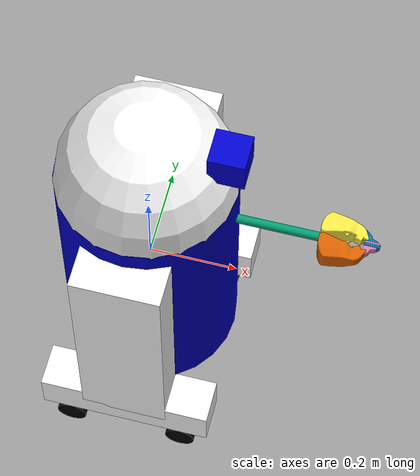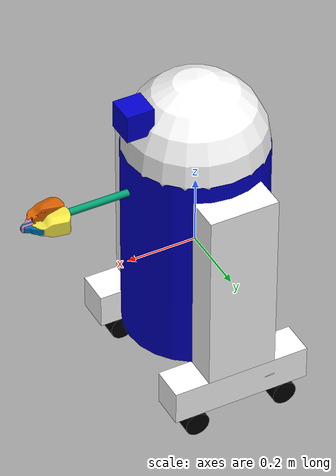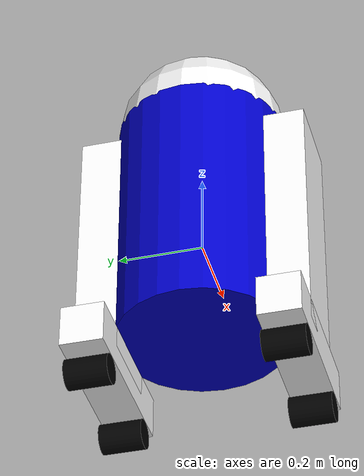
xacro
<?xml version="1.0"?>
<robot name="roscontrol" xmlns:xacro="http://ros.org/wiki/xacro">
<xacro:include filename="$(find myrobot_gazebo)/urdf/camera.xacro" />

  <xacro:property name="width" value="0.2" />
  <xacro:property name="leglen" value="0.6" />
  <xacro:property name="polelen" value="0.2" />
  <xacro:property name="bodylen" value="0.6" />
  <xacro:property name="baselen" value="0.4" />
  <xacro:property name="wheeldiam" value="0.07" />
  <xacro:property name="pi" value="3.1415" />

  <material name="blue">
    <color rgba="0 0 0.8 1"/>
  </material>

  <material name="black">
    <color rgba="0 0 0 1"/>
  </material>

  <material name="white">
    <color rgba="1 1 1 1"/>
  </material>

  <xacro:macro name="default_inertial" params="mass">
    <inertial>
      <mass value="${mass}" />
      <inertia ixx="1.0" ixy="0.0" ixz="0.0" iyy="1.0" iyz="0.0" izz="1.0" />
    </inertial>
  </xacro:macro>

  <!-- BASE-FOOTPRINT -->
  <!-- base_footprint is a fictitious link(frame) that is on the ground right below base_link origin -->
  <link name="base_footprint">
    <visual>
      <origin xyz="0 0 0" rpy="0 0 0" />
      <geometry>
        <box size="0.001 0.001 0.001" />
      </geometry>
    </visual>
  </link>

  <joint name="base_footprint_joint" type="fixed">
    <origin xyz="0 0 ${wheeldiam/2}" rpy="0 0 0" />
    <parent link="base_footprint"/>
    <child link="base_link" />
  </joint>

  <link name="base_link">
    <visual>
      <geometry>
        <cylinder radius="${width}" length="${bodylen}"/>
      </geometry>
      <material name="blue"/>
    </visual>
    <collision>
      <geometry>
        <cylinder radius="${width}" length="${bodylen}"/>
      </geometry>
    </collision>
    <xacro:default_inertial mass="10"/>
  </link>
  <gazebo reference="base_link">
    <material>Gazebo/Blue</material>
  </gazebo>

  <xacro:macro name="wheel" params="prefix suffix reflect">

    <link name="${prefix}_${suffix}_wheel">
      <visual>
        <origin xyz="0 0 0" rpy="${pi/2} 0 0" />
        <geometry>
          <cylinder radius="${wheeldiam/2}" length="0.1"/>
        </geometry>
        <material name="black"/>
      </visual>
      <collision>
        <origin xyz="0 0 0" rpy="${pi/2} 0 0" />
        <geometry>
          <cylinder radius="${wheeldiam/2}" length="0.1"/>
        </geometry>
      </collision>
      <xacro:default_inertial mass="1"/>
    </link>
    <gazebo reference="${prefix}_${suffix}_wheel">
      <material>Gazebo/Black</material>
    </gazebo>

    <joint name="${prefix}_${suffix}_wheel_joint" type="continuous">
      <axis xyz="0 1 0" rpy="0 0 0" />
      <parent link="${prefix}_base"/>
      <child link="${prefix}_${suffix}_wheel"/>
      <origin xyz="${baselen*reflect/3} 0 -${wheeldiam/2+.05}" rpy="0 0 0"/>
    </joint>

    <!-- This block provides the simulator (Gazebo) with information on a few additional
    physical properties. See http://gazebosim.org/tutorials/?tut=ros_urdf for more-->
    <gazebo reference="${prefix}_${suffix}_wheel">
      <mu1 value="200.0"/>
      <mu2 value="100.0"/>
      <kp value="10000000.0" />
      <kd value="1.0" />
      <material>Gazebo/Grey</material>
    </gazebo>

    <!-- This block connects the wheel joint to an actuator (motor), which informs both
    simulation and visualization of the robot -->
    <transmission name="${prefix}_${suffix}_wheel_trans">
      <type>transmission_interface/SimpleTransmission</type>
      <joint name="${prefix}_${suffix}_wheel_joint"/>
      <actuator name="${prefix}_${suffix}_wheel_motor">
        <hardwareInterface>VelocityJointInterface</hardwareInterface>
        <mechanicalReduction>1</mechanicalReduction>
      </actuator>
    </transmission>

  </xacro:macro>

  <xacro:macro name="leg" params="prefix reflect">
    <link name="${prefix}_leg">
      <visual>
        <geometry>
          <box size="${leglen} 0.1 0.2"/>
        </geometry>
        <origin xyz="0 0 -${leglen/2}" rpy="0 ${pi/2} 0"/>
        <material name="white"/>
      </visual>
      <collision>
        <geometry>
          <box size="${leglen} 0.1 0.2"/>
        </geometry>
        <origin xyz="0 0 -${leglen/2}" rpy="0 ${pi/2} 0"/>
      </collision>
      <xacro:default_inertial mass="10"/>
    </link>

    <joint name="base_to_${prefix}_leg" type="fixed">
      <parent link="base_link"/>
      <child link="${prefix}_leg"/>
      <origin xyz="0 ${reflect*(width+.02)} 0.25" />
    </joint>

    <link name="${prefix}_base">
      <visual>
        <geometry>
          <box size="${baselen} 0.1 0.1"/>
        </geometry>
        <material name="white"/>
      </visual>
      <collision>
        <geometry>
          <box size="${baselen} 0.1 0.1"/>
        </geometry>
      </collision>
      <xacro:default_inertial mass="10"/>
    </link>

    <joint name="${prefix}_base_joint" type="fixed">
      <parent link="${prefix}_leg"/>
      <child link="${prefix}_base"/>
      <origin xyz="0 0 ${-leglen}" />
    </joint>
    <xacro:wheel prefix="${prefix}" suffix="front" reflect="1"/>
    <xacro:wheel prefix="${prefix}" suffix="back" reflect="-1"/>
  </xacro:macro>
  <xacro:leg prefix="right" reflect="-1" />
  <xacro:leg prefix="left" reflect="1" />

  <joint name="gripper_extension" type="prismatic">
    <parent link="base_link"/>
    <child link="gripper_pole"/>
    <limit effort="1000.0" lower="-${width*2-.02}" upper="0" velocity="0.5"/>
    <origin rpy="0 0 0" xyz="${width-.01} 0 0.2"/>
    <limit effort="30" velocity="0.2"/>
    <dynamics damping="0.0" friction="0.0"/>
  </joint>

  <link name="gripper_pole">
    <visual>
      <geometry>
        <cylinder length="${polelen}" radius="0.01"/>
      </geometry>
      <origin xyz="${polelen/2} 0 0" rpy="0 ${pi/2} 0 "/>
    </visual>
    <collision>
      <geometry>
        <cylinder length="${polelen}" radius="0.01"/>
      </geometry>
      <origin xyz="${polelen/2} 0 0" rpy="0 ${pi/2} 0 "/>
    </collision>
    <xacro:default_inertial mass="0.05"/>
  </link>

  <xacro:macro name="gripper" params="prefix reflect">
    <joint name="${prefix}_gripper_joint" type="revolute">
      <axis xyz="0 0 ${reflect}"/>
      <limit effort="1000.0" lower="0.0" upper="0.548" velocity="0.5"/>
      <origin rpy="0 0 0" xyz="${polelen} ${reflect*0.01} 0"/>
      <parent link="gripper_pole"/>
      <child link="${prefix}_gripper"/>
      <limit effort="30" velocity="1.0"/>
      <dynamics damping="0.0" friction="0.0"/>
    </joint>
    <link name="${prefix}_gripper">
      <visual>
        <origin rpy="${(reflect-1)/2*pi} 0 0" xyz="0 0 0"/>
        <geometry>
          <mesh filename="package://urdf_tutorial/meshes/l_finger.dae"/>
        </geometry>
      </visual>
      <collision>
        <geometry>
          <mesh filename="package://urdf_tutorial/meshes/l_finger.dae"/>
        </geometry>
        <origin rpy="${(reflect-1)/2*pi} 0 0" xyz="0 0 0"/>
      </collision>
      <xacro:default_inertial mass="0.05"/>
    </link>

    <joint name="${prefix}_tip_joint" type="fixed">
      <parent link="${prefix}_gripper"/>
      <child link="${prefix}_tip"/>
    </joint>
    <link name="${prefix}_tip">
      <visual>
        <origin rpy="${(reflect-1)/2*pi} 0 0" xyz="0.09137 0.00495 0"/>
        <geometry>
          <mesh filename="package://urdf_tutorial/meshes/l_finger_tip.dae"/>
        </geometry>
      </visual>
      <collision>
        <geometry>
          <mesh filename="package://urdf_tutorial/meshes/l_finger_tip.dae"/>
        </geometry>
        <origin rpy="${(reflect-1)/2*pi} 0 0" xyz="0.09137 0.00495 0"/>
      </collision>
      <xacro:default_inertial mass="0.05"/>
    </link>
  </xacro:macro>

  <xacro:gripper prefix="left" reflect="1" />
  <xacro:gripper prefix="right" reflect="-1" />

  <link name="head">
    <visual>
      <geometry>
        <sphere radius="${width}"/>
      </geometry>
      <material name="white"/>
    </visual>
    <collision>
      <geometry>
        <sphere radius="${width}"/>
      </geometry>
    </collision>
    <xacro:default_inertial mass="2"/>
  </link>

  <joint name="head_swivel" type="continuous">
    <parent link="base_link"/>
    <child link="head"/>
    <axis xyz="0 0 1"/>
    <origin xyz="0 0 ${bodylen/2}"/>
    <limit effort="30" velocity="1.0"/>
    <dynamics damping="0.0" friction="0.0"/>
  </joint>8

  <xacro:usb_camera prefix="camera"/>

  <joint name="tobox" type="fixed">
    <parent link="head"/>
    <child link="camera_link"/>
    <origin xyz="${.707*width+0.04} 0 ${.707*width}"/>
  </joint>

  <!-- Gazebo plugin for ROS Control -->
  <gazebo>
    <plugin name="differential_drive_controller" filename="libgazebo_ros_diff_drive.so">
      <rosDebugLevel>Debug</rosDebugLevel>
      <publishWheelTF>true</publishWheelTF>
      <robotNamespace>/</robotNamespace>
      <publishTf>1</publishTf>
      <publishWheelJointState>true</publishWheelJointState>
      <alwaysOn>true</alwaysOn>
      <updateRate>100.0</updateRate>
      <legacyMode>true</legacyMode>
      <leftJoint>left_front_wheel_joint</leftJoint>
      <rightJoint>right_front_wheel_joint</rightJoint>
      <wheelSeparation>${width*2}</wheelSeparation>
      <wheelDiameter>${wheeldiam}</wheelDiameter>
      <broadcastTF>1</broadcastTF>
      <wheelTorque>30</wheelTorque>
      <wheelAcceleration>1.8</wheelAcceleration>
      <commandTopic>cmd_vel</commandTopic>
      <odometryFrame>odom</odometryFrame>
      <odometryTopic>odom</odometryTopic>
      <robotBaseFrame>base_footprint</robotBaseFrame>
    </plugin>
  </gazebo>

</robot>

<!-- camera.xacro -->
<robot xmlns:xacro="http://www.ros.org/wiki/xacro" name="camera">
<xacro:macro name="usb_camera" params="prefix:=camera">
  <link name="${prefix}_link">
    <visual>
      <geometry>
        <box size="0.08 0.08 0.08"/>
      </geometry>
      <material name="blue"/>
    </visual>
  </link>
  <gazebo reference="${prefix}_link">
    <material>Gazebo/Black</material>
  </gazebo>

  <gazebo reference="${prefix}_link">
    <sensor type="camera" name="camera_node">
      <update_rate>30.0</update_rate>
        <camera name="head">
                    <horizontal_fov>1.3962634</horizontal_fov>
                    <image>
                        <width>1280</width>
                        <height>720</height>
                        <format>R8G8B8</format>
                    </image>
                    <clip>
                        <near>0.02</near>
                        <far>300</far>
                    </clip>
                    <noise>
                        <type>gaussian</type>
                        <mean>0.0</mean>
                        <stddev>0.007</stddev>
                    </noise>
                </camera>
                <plugin name="gazebo_camera" filename="libgazebo_ros_camera.so">
                    <alwaysOn>true</alwaysOn>
                    <updateRate>0.0</updateRate>
                    <cameraName>/camera</cameraName>
                    <imageTopicName>image_raw</imageTopicName>
                    <cameraInfoTopicName>camera_info</cameraInfoTopicName>
                    <frameName>camera_link</frameName>
                    <hackBaseline>0.07</hackBaseline>
                    <distortionK1>0.0</distortionK1>
                    <distortionK2>0.0</distortionK2>
                    <distortionK3>0.0</distortionK3>
                    <distortionT1>0.0</distortionT1>
                    <distortionT2>0.0</distortionT2>
                </plugin>
            </sensor>
        </gazebo>
</xacro:macro>
</robot>
